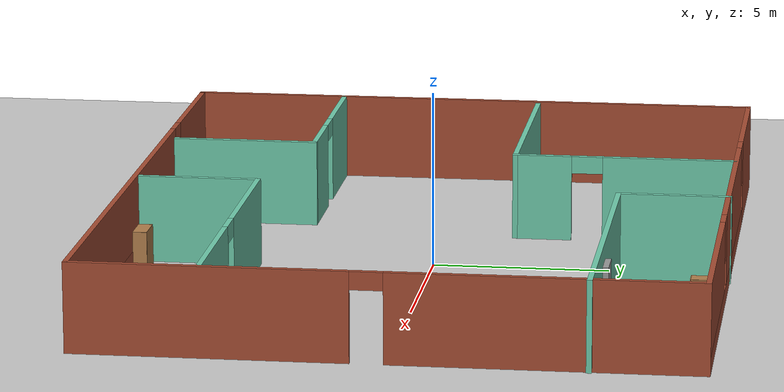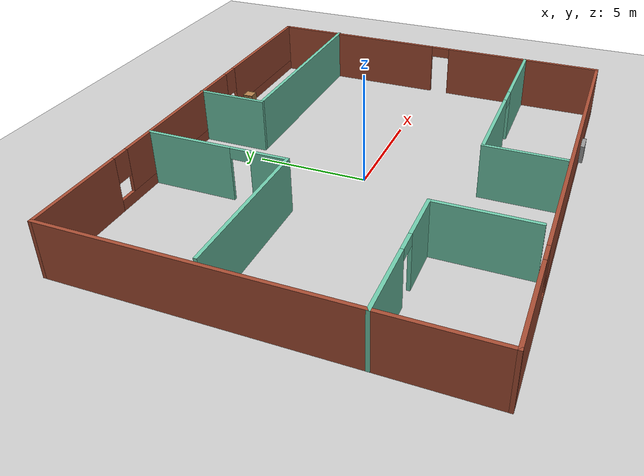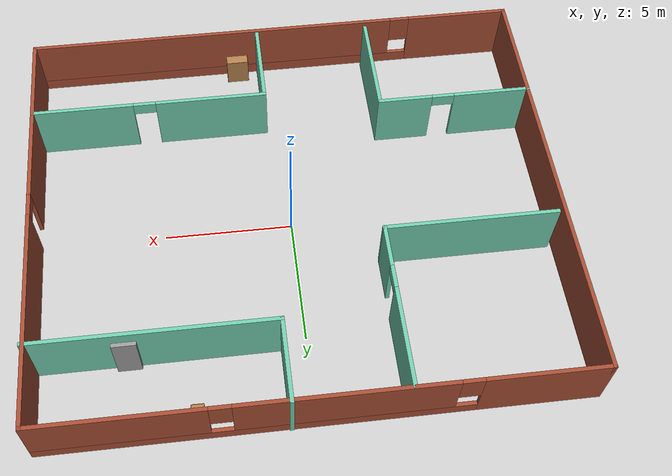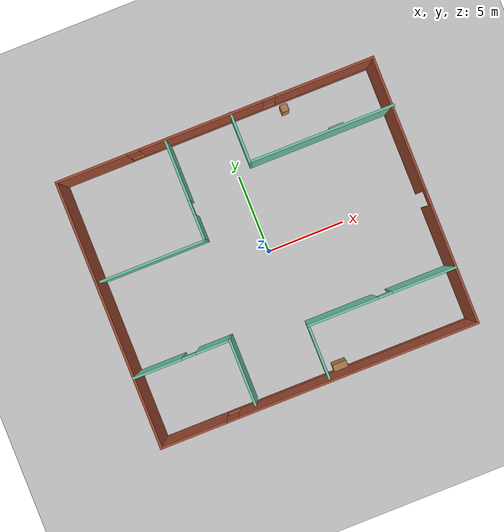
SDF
<sdf version="1.6">
 <world name="default">
  <light name="sun" type="directional">
   <pose>0 0 10 0 -0 0</pose>
   <diffuse>0.8 0.8 0.8 1</diffuse>
   <specular>0.2 0.2 0.2 1</specular>
   <attenuation>
    <range>1000</range>
    <constant>0.9</constant>
    <linear>0.01</linear>
    <quadratic>0.001</quadratic>
   </attenuation>
   <direction>-0.5 0.1 -0.9</direction>
  </light>
  <model name="ground_plane">
   <static>1</static>
   <link name="link">
    <collision name="collision">
     <geometry><plane><normal>0 0 1</normal><size>100 100</size></plane></geometry>
     <surface>
      <contact><collide_bitmask>65535</collide_bitmask></contact>
      <friction><ode><mu>100</mu><mu2>50</mu2></ode></friction>
     </surface>
    </collision>
    <visual name="visual">
     <cast_shadows>0</cast_shadows>
     <geometry><plane><normal>0 0 1</normal><size>100 100</size></plane></geometry>
     <material>
      <script><uri>file://media/materials/scripts/gazebo.material</uri><name>Gazebo/Grey</name></script>
     </material>
    </visual>
   </link>
  </model>
  <gravity>0 0 -9.8</gravity>
  <magnetic_field>6e-06 2.3e-05 -4.2e-05</magnetic_field>
  <atmosphere type="adiabatic"/>
  <physics name="default_physics" default="0" type="ode">
   <max_step_size>0.001</max_step_size>
   <real_time_factor>1</real_time_factor>
   <real_time_update_rate>1000</real_time_update_rate>
  </physics>
  <scene><ambient>0.4 0.4 0.4 1</ambient><background>0.7 0.7 0.7 1</background><shadows>1</shadows></scene>
  <spherical_coordinates>
   <surface_model>EARTH_WGS84</surface_model>
   <latitude_deg>0</latitude_deg>
   <longitude_deg>0</longitude_deg>
   <elevation>0</elevation>
   <heading_deg>0</heading_deg>
  </spherical_coordinates>
  <model name="ZilinWorld">
   <pose>-0.093491 -0.025683 0 0 -0 0</pose>
   <link name="Door_4">
    <collision name="Door_4_Collision">
     <geometry><box><size>0.9 0.17 2</size></box></geometry>
     <pose>0 0 1 0 -0 0</pose>
    </collision>
    <visual name="Door_4_Visual">
     <pose>0 0 1 0 -0 0</pose>
     <geometry><box><size>0.9 0.17 2</size></box></geometry>
     <material>
      <script><uri>file://media/materials/scripts/gazebo.material</uri><name>Gazebo/Grey</name></script>
     </material>
    </visual>
    <pose>6.60846 5.49315 0 0 -0 0</pose>
   </link>
   <link name="Wall_11">
    <pose>-0.036147 8.40851 0 0 -0 0</pose>
    <visual name="Wall_11_Visual_0">
     <pose>-7.84832 0 1.25 0 -0 0</pose>
     <geometry><box><size>4.55336 0.15 2.5</size></box></geometry>
     <material>
      <script><uri>file://media/materials/scripts/gazebo.material</uri><name>Gazebo/Bricks</name></script>
      <ambient>1 1 1 1</ambient>
     </material>
     <meta><layer>0</layer></meta>
    </visual>
    <collision name="Wall_11_Collision_0">
     <geometry><box><size>4.55336 0.15 2.5</size></box></geometry>
     <pose>-7.84832 0 1.25 0 -0 0</pose>
    </collision>
    <visual name="Wall_11_Visual_1">
     <pose>2.27668 0 0.25 0 -0 0</pose>
     <geometry><box><size>15.6966 0.15 0.5</size></box></geometry>
     <material>
      <script><uri>file://media/materials/scripts/gazebo.material</uri><name>Gazebo/Bricks</name></script>
      <ambient>1 1 1 1</ambient>
     </material>
     <meta><layer>0</layer></meta>
    </visual>
    <collision name="Wall_11_Collision_1">
     <geometry><box><size>15.6966 0.15 0.5</size></box></geometry>
     <pose>2.27668 0 0.25 0 -0 0</pose>
    </collision>
    <visual name="Wall_11_Visual_2">
     <pose>-0.86734 0 1.5 0 -0 0</pose>
     <geometry><box><size>7.80861 0.15 2</size></box></geometry>
     <material>
      <script><uri>file://media/materials/scripts/gazebo.material</uri><name>Gazebo/Bricks</name></script>
      <ambient>1 1 1 1</ambient>
     </material>
     <meta><layer>0</layer></meta>
    </visual>
    <collision name="Wall_11_Collision_2">
     <geometry><box><size>7.80861 0.15 2</size></box></geometry>
     <pose>-0.86734 0 1.5 0 -0 0</pose>
    </collision>
    <visual name="Wall_11_Visual_3">
     <pose>6.98098 0 1.5 0 -0 0</pose>
     <geometry><box><size>6.28803 0.15 2</size></box></geometry>
     <material>
      <script><uri>file://media/materials/scripts/gazebo.material</uri><name>Gazebo/Bricks</name></script>
      <ambient>1 1 1 1</ambient>
     </material>
     <meta><layer>0</layer></meta>
    </visual>
    <collision name="Wall_11_Collision_3">
     <geometry><box><size>6.28803 0.15 2</size></box></geometry>
     <pose>6.98098 0 1.5 0 -0 0</pose>
    </collision>
    <visual name="Wall_11_Visual_4">
     <pose>-5.17164 0 1.9 0 -0 0</pose>
     <geometry><box><size>0.8 0.15 1.2</size></box></geometry>
     <material>
      <script><uri>file://media/materials/scripts/gazebo.material</uri><name>Gazebo/Bricks</name></script>
      <ambient>1 1 1 1</ambient>
     </material>
     <meta><layer>0</layer></meta>
    </visual>
    <collision name="Wall_11_Collision_4">
     <geometry><box><size>0.8 0.15 1.2</size></box></geometry>
     <pose>-5.17164 0 1.9 0 -0 0</pose>
    </collision>
    <visual name="Wall_11_Visual_5">
     <pose>3.43696 0 1.9 0 -0 0</pose>
     <geometry><box><size>0.8 0.15 1.2</size></box></geometry>
     <material>
      <script><uri>file://media/materials/scripts/gazebo.material</uri><name>Gazebo/Bricks</name></script>
      <ambient>1 1 1 1</ambient>
     </material>
     <meta><layer>0</layer></meta>
    </visual>
    <collision name="Wall_11_Collision_5">
     <geometry><box><size>0.8 0.15 1.2</size></box></geometry>
     <pose>3.43696 0 1.9 0 -0 0</pose>
    </collision>
   </link>
   <link name="Wall_13">
    <collision name="Wall_13_Collision">
     <geometry><box><size>3.25 0.15 2.5</size></box></geometry>
     <pose>0 0 1.25 0 -0 0</pose>
    </collision>
    <visual name="Wall_13_Visual">
     <pose>0 0 1.25 0 -0 0</pose>
     <geometry><box><size>3.25 0.15 2.5</size></box></geometry>
     <material>
      <script><uri>file://media/materials/scripts/gazebo.material</uri><name>Gazebo/Grey</name></script>
      <ambient>0.435294 0.796078 0.67451 1</ambient>
     </material>
     <meta><layer>0</layer></meta>
    </visual>
    <pose>0.98719 6.89149 0 0 0 -1.5708</pose>
   </link>
   <link name="Wall_14">
    <collision name="Wall_14_Collision">
     <geometry><box><size>9.25 0.15 2.5</size></box></geometry>
     <pose>0 0 1.25 0 -0 0</pose>
    </collision>
    <visual name="Wall_14_Visual">
     <pose>0 0 1.25 0 -0 0</pose>
     <geometry><box><size>9.25 0.15 2.5</size></box></geometry>
     <material>
      <script><uri>file://media/materials/scripts/gazebo.material</uri><name>Gazebo/Grey</name></script>
      <ambient>0.435294 0.796078 0.67451 1</ambient>
     </material>
     <meta><layer>0</layer></meta>
    </visual>
    <pose>5.53719 5.34149 0 0 -0 0</pose>
   </link>
   <link name="Wall_16">
    <pose>-3.19643 5.18604 0 0 0 -1.5708</pose>
    <visual name="Wall_16_Visual_0">
     <pose>-1.3079 0 1.25 0 -0 0</pose>
     <geometry><box><size>3.88419 0.15 2.5</size></box></geometry>
     <material>
      <script><uri>file://media/materials/scripts/gazebo.material</uri><name>Gazebo/Grey</name></script>
      <ambient>0.435294 0.796078 0.67451 1</ambient>
     </material>
     <meta><layer>0</layer></meta>
    </visual>
    <collision name="Wall_16_Collision_0">
     <geometry><box><size>3.88419 0.15 2.5</size></box></geometry>
     <pose>-1.3079 0 1.25 0 -0 0</pose>
    </collision>
    <visual name="Wall_16_Visual_1">
     <pose>2.3921 0 1.25 0 -0 0</pose>
     <geometry><box><size>1.71581 0.15 2.5</size></box></geometry>
     <material>
      <script><uri>file://media/materials/scripts/gazebo.material</uri><name>Gazebo/Grey</name></script>
      <ambient>0.435294 0.796078 0.67451 1</ambient>
     </material>
     <meta><layer>0</layer></meta>
    </visual>
    <collision name="Wall_16_Collision_1">
     <geometry><box><size>1.71581 0.15 2.5</size></box></geometry>
     <pose>2.3921 0 1.25 0 -0 0</pose>
    </collision>
    <visual name="Wall_16_Visual_2">
     <pose>1.08419 0 2.25 0 -0 0</pose>
     <geometry><box><size>0.9 0.15 0.5</size></box></geometry>
     <material>
      <script><uri>file://media/materials/scripts/gazebo.material</uri><name>Gazebo/Grey</name></script>
      <ambient>0.435294 0.796078 0.67451 1</ambient>
     </material>
     <meta><layer>0</layer></meta>
    </visual>
    <collision name="Wall_16_Collision_2">
     <geometry><box><size>0.9 0.15 0.5</size></box></geometry>
     <pose>1.08419 0 2.25 0 -0 0</pose>
    </collision>
   </link>
   <link name="Wall_20">
    <collision name="Wall_20_Collision">
     <geometry><box><size>6.75 0.15 2.5</size></box></geometry>
     <pose>0 0 1.25 0 -0 0</pose>
    </collision>
    <visual name="Wall_20_Visual">
     <pose>0 0 1.25 0 -0 0</pose>
     <geometry><box><size>6.75 0.15 2.5</size></box></geometry>
     <material>
      <script><uri>file://media/materials/scripts/gazebo.material</uri><name>Gazebo/Grey</name></script>
      <ambient>0.435294 0.796078 0.67451 1</ambient>
     </material>
     <meta><layer>0</layer></meta>
    </visual>
    <pose>-6.49643 2.01104 0 0 -0 3.14159</pose>
   </link>
   <link name="Wall_22">
    <pose>-7.03719 -4.00401 0 0 -0 0</pose>
    <visual name="Wall_22_Visual_0">
     <pose>-1.55825 0 1.25 0 -0 0</pose>
     <geometry><box><size>3.13351 0.15 2.5</size></box></geometry>
     <material>
      <script><uri>file://media/materials/scripts/gazebo.material</uri><name>Gazebo/Grey</name></script>
      <ambient>0.435294 0.796078 0.67451 1</ambient>
     </material>
     <meta><layer>0</layer></meta>
    </visual>
    <collision name="Wall_22_Collision_0">
     <geometry><box><size>3.13351 0.15 2.5</size></box></geometry>
     <pose>-1.55825 0 1.25 0 -0 0</pose>
    </collision>
    <visual name="Wall_22_Visual_1">
     <pose>2.01675 0 1.25 0 -0 0</pose>
     <geometry><box><size>2.21649 0.15 2.5</size></box></geometry>
     <material>
      <script><uri>file://media/materials/scripts/gazebo.material</uri><name>Gazebo/Grey</name></script>
      <ambient>0.435294 0.796078 0.67451 1</ambient>
     </material>
     <meta><layer>0</layer></meta>
    </visual>
    <collision name="Wall_22_Collision_1">
     <geometry><box><size>2.21649 0.15 2.5</size></box></geometry>
     <pose>2.01675 0 1.25 0 -0 0</pose>
    </collision>
    <visual name="Wall_22_Visual_2">
     <pose>0.458508 0 2.25 0 -0 0</pose>
     <geometry><box><size>0.9 0.15 0.5</size></box></geometry>
     <material>
      <script><uri>file://media/materials/scripts/gazebo.material</uri><name>Gazebo/Grey</name></script>
      <ambient>0.435294 0.796078 0.67451 1</ambient>
     </material>
     <meta><layer>0</layer></meta>
    </visual>
    <collision name="Wall_22_Collision_2">
     <geometry><box><size>0.9 0.15 0.5</size></box></geometry>
     <pose>0.458508 0 2.25 0 -0 0</pose>
    </collision>
   </link>
   <link name="Wall_23">
    <collision name="Wall_23_Collision">
     <geometry><box><size>4.25 0.15 2.5</size></box></geometry>
     <pose>0 0 1.25 0 -0 0</pose>
    </collision>
    <visual name="Wall_23_Visual">
     <pose>0 0 1.25 0 -0 0</pose>
     <geometry><box><size>4.25 0.15 2.5</size></box></geometry>
     <material>
      <script><uri>file://media/materials/scripts/gazebo.material</uri><name>Gazebo/Grey</name></script>
      <ambient>0.435294 0.796078 0.67451 1</ambient>
     </material>
     <meta><layer>0</layer></meta>
    </visual>
    <pose>-3.98719 -6.05401 0 0 0 -1.5708</pose>
   </link>
   <link name="Wall_25">
    <pose>5.32099 -4.91139 0 0 -0 3.14159</pose>
    <visual name="Wall_25_Visual_0">
     <pose>-2.69931 0 1.25 0 -0 0</pose>
     <geometry><box><size>4.10137 0.15 2.5</size></box></geometry>
     <material>
      <script><uri>file://media/materials/scripts/gazebo.material</uri><name>Gazebo/Grey</name></script>
      <ambient>0.435294 0.796078 0.67451 1</ambient>
     </material>
     <meta><layer>0</layer></meta>
    </visual>
    <collision name="Wall_25_Collision_0">
     <geometry><box><size>4.10137 0.15 2.5</size></box></geometry>
     <pose>-2.69931 0 1.25 0 -0 0</pose>
    </collision>
    <visual name="Wall_25_Visual_1">
     <pose>2.50068 0 1.25 0 -0 0</pose>
     <geometry><box><size>4.49863 0.15 2.5</size></box></geometry>
     <material>
      <script><uri>file://media/materials/scripts/gazebo.material</uri><name>Gazebo/Grey</name></script>
      <ambient>0.435294 0.796078 0.67451 1</ambient>
     </material>
     <meta><layer>0</layer></meta>
    </visual>
    <collision name="Wall_25_Collision_1">
     <geometry><box><size>4.49863 0.15 2.5</size></box></geometry>
     <pose>2.50068 0 1.25 0 -0 0</pose>
    </collision>
    <visual name="Wall_25_Visual_2">
     <pose>-0.198629 0 2.25 0 -0 0</pose>
     <geometry><box><size>0.9 0.15 0.5</size></box></geometry>
     <material>
      <script><uri>file://media/materials/scripts/gazebo.material</uri><name>Gazebo/Grey</name></script>
      <ambient>0.435294 0.796078 0.67451 1</ambient>
     </material>
     <meta><layer>0</layer></meta>
    </visual>
    <collision name="Wall_25_Collision_2">
     <geometry><box><size>0.9 0.15 0.5</size></box></geometry>
     <pose>-0.198629 0 2.25 0 -0 0</pose>
    </collision>
   </link>
   <link name="Wall_26">
    <collision name="Wall_26_Collision">
     <geometry><box><size>3.5 0.15 2.5</size></box></geometry>
     <pose>0 0 1.25 0 -0 0</pose>
    </collision>
    <visual name="Wall_26_Visual">
     <pose>0 0 1.25 0 -0 0</pose>
     <geometry><box><size>3.5 0.15 2.5</size></box></geometry>
     <material>
      <script><uri>file://media/materials/scripts/gazebo.material</uri><name>Gazebo/Grey</name></script>
      <ambient>0.435294 0.796078 0.67451 1</ambient>
     </material>
     <meta><layer>0</layer></meta>
    </visual>
    <pose>0.645986 -6.58639 0 0 0 -1.5708</pose>
   </link>
   <link name="Wall_6">
    <collision name="Wall_6_Collision">
     <geometry><box><size>17 0.15 2.5</size></box></geometry>
     <pose>0 0 1.25 0 -0 0</pose>
    </collision>
    <visual name="Wall_6_Visual">
     <pose>0 0 1.25 0 -0 0</pose>
     <geometry><box><size>17 0.15 2.5</size></box></geometry>
     <material>
      <script><uri>file://media/materials/scripts/gazebo.material</uri><name>Gazebo/Bricks</name></script>
      <ambient>1 1 1 1</ambient>
     </material>
     <meta><layer>0</layer></meta>
    </visual>
    <pose>-10.0861 -0.016492 0 0 0 -1.5708</pose>
   </link>
   <link name="Wall_7">
    <pose>-0.036147 -8.44149 0 0 -0 0</pose>
    <visual name="Wall_7_Visual_0">
     <pose>-8.00923 0 1.25 0 -0 0</pose>
     <geometry><box><size>4.23154 0.15 2.5</size></box></geometry>
     <material>
      <script><uri>file://media/materials/scripts/gazebo.material</uri><name>Gazebo/Bricks</name></script>
      <ambient>1 1 1 1</ambient>
     </material>
     <meta><layer>0</layer></meta>
    </visual>
    <collision name="Wall_7_Collision_0">
     <geometry><box><size>4.23154 0.15 2.5</size></box></geometry>
     <pose>-8.00923 0 1.25 0 -0 0</pose>
    </collision>
    <visual name="Wall_7_Visual_1">
     <pose>2.11577 0 0.25 0 -0 0</pose>
     <geometry><box><size>16.0185 0.15 0.5</size></box></geometry>
     <material>
      <script><uri>file://media/materials/scripts/gazebo.material</uri><name>Gazebo/Bricks</name></script>
      <ambient>1 1 1 1</ambient>
     </material>
     <meta><layer>0</layer></meta>
    </visual>
    <collision name="Wall_7_Collision_1">
     <geometry><box><size>16.0185 0.15 0.5</size></box></geometry>
     <pose>2.11577 0 0.25 0 -0 0</pose>
    </collision>
    <visual name="Wall_7_Visual_2">
     <pose>2.51577 0 1.5 0 -0 0</pose>
     <geometry><box><size>15.2185 0.15 2</size></box></geometry>
     <material>
      <script><uri>file://media/materials/scripts/gazebo.material</uri><name>Gazebo/Bricks</name></script>
      <ambient>1 1 1 1</ambient>
     </material>
     <meta><layer>0</layer></meta>
    </visual>
    <collision name="Wall_7_Collision_2">
     <geometry><box><size>15.2185 0.15 2</size></box></geometry>
     <pose>2.51577 0 1.5 0 -0 0</pose>
    </collision>
    <visual name="Wall_7_Visual_3">
     <pose>-5.49346 0 1.9 0 -0 0</pose>
     <geometry><box><size>0.8 0.15 1.2</size></box></geometry>
     <material>
      <script><uri>file://media/materials/scripts/gazebo.material</uri><name>Gazebo/Bricks</name></script>
      <ambient>1 1 1 1</ambient>
     </material>
     <meta><layer>0</layer></meta>
    </visual>
    <collision name="Wall_7_Collision_3">
     <geometry><box><size>0.8 0.15 1.2</size></box></geometry>
     <pose>-5.49346 0 1.9 0 -0 0</pose>
    </collision>
   </link>
   <link name="Wall_8">
    <pose>10.0139 -0.016492 0 0 -0 1.5708</pose>
    <visual name="Wall_8_Visual_0">
     <pose>-4.71122 0 1.25 0 -0 0</pose>
     <geometry><box><size>7.57756 0.15 2.5</size></box></geometry>
     <material>
      <script><uri>file://media/materials/scripts/gazebo.material</uri><name>Gazebo/Bricks</name></script>
      <ambient>1 1 1 1</ambient>
     </material>
     <meta><layer>0</layer></meta>
    </visual>
    <collision name="Wall_8_Collision_0">
     <geometry><box><size>7.57756 0.15 2.5</size></box></geometry>
     <pose>-4.71122 0 1.25 0 -0 0</pose>
    </collision>
    <visual name="Wall_8_Visual_1">
     <pose>4.23878 0 1.25 0 -0 0</pose>
     <geometry><box><size>8.52244 0.15 2.5</size></box></geometry>
     <material>
      <script><uri>file://media/materials/scripts/gazebo.material</uri><name>Gazebo/Bricks</name></script>
      <ambient>1 1 1 1</ambient>
     </material>
     <meta><layer>0</layer></meta>
    </visual>
    <collision name="Wall_8_Collision_1">
     <geometry><box><size>8.52244 0.15 2.5</size></box></geometry>
     <pose>4.23878 0 1.25 0 -0 0</pose>
    </collision>
    <visual name="Wall_8_Visual_2">
     <pose>-0.472442 0 2.25 0 -0 0</pose>
     <geometry><box><size>0.9 0.15 0.5</size></box></geometry>
     <material>
      <script><uri>file://media/materials/scripts/gazebo.material</uri><name>Gazebo/Bricks</name></script>
      <ambient>1 1 1 1</ambient>
     </material>
     <meta><layer>0</layer></meta>
    </visual>
    <collision name="Wall_8_Collision_2">
     <geometry><box><size>0.9 0.15 0.5</size></box></geometry>
     <pose>-0.472442 0 2.25 0 -0 0</pose>
    </collision>
   </link>
   <link name="Window_1">
    <collision name="Window_1_Collision">
     <geometry><box><size>0.8 0.17 0.8</size></box></geometry>
     <pose>0 0 0.4 0 -0 0</pose>
    </collision>
    <visual name="Window_1_Visual">
     <pose>0 0 0.4 0 -0 0</pose>
     <geometry><box><size>0.8 0.17 0.8</size></box></geometry>
     <material>
      <script><uri>file://media/materials/scripts/gazebo.material</uri><name>Gazebo/Grey</name></script>
     </material>
    </visual>
    <pose>4.52718 -8.61482 0.5 0 -0 0</pose>
   </link>
   <static>1</static>
  </model>
  <model name="bookshelf">
   <static>1</static>
   <link name="link">
    <inertial><mass>1</mass></inertial>
    <collision name="back">
     <pose>0 0.005 0.6 0 -0 0</pose>
     <geometry><box><size>0.9 0.01 1.2</size></box></geometry>
    </collision>
    <visual name="visual1">
     <pose>0 0.005 0.6 0 -0 0</pose>
     <geometry><box><size>0.9 0.01 1.2</size></box></geometry>
     <material>
      <script><uri>file://media/materials/scripts/gazebo.material</uri><name>Gazebo/Wood</name></script>
     </material>
    </visual>
    <collision name="left_side">
     <pose>0.45 -0.195 0.6 0 -0 0</pose>
     <geometry><box><size>0.02 0.4 1.2</size></box></geometry>
    </collision>
    <visual name="visual2">
     <pose>0.45 -0.195 0.6 0 -0 0</pose>
     <geometry><box><size>0.02 0.4 1.2</size></box></geometry>
     <material>
      <script><uri>file://media/materials/scripts/gazebo.material</uri><name>Gazebo/Wood</name></script>
     </material>
    </visual>
    <collision name="right_side">
     <pose>-0.45 -0.195 0.6 0 -0 0</pose>
     <geometry><box><size>0.02 0.4 1.2</size></box></geometry>
    </collision>
    <visual name="visual3">
     <pose>-0.45 -0.195 0.6 0 -0 0</pose>
     <geometry><box><size>0.02 0.4 1.2</size></box></geometry>
     <material>
      <script><uri>file://media/materials/scripts/gazebo.material</uri><name>Gazebo/Wood</name></script>
     </material>
    </visual>
    <collision name="bottom">
     <pose>0 -0.195 0.03 0 -0 0</pose>
     <geometry><box><size>0.88 0.4 0.06</size></box></geometry>
    </collision>
    <visual name="visual4">
     <pose>0 -0.195 0.03 0 -0 0</pose>
     <geometry><box><size>0.88 0.4 0.06</size></box></geometry>
     <material>
      <script><uri>file://media/materials/scripts/gazebo.material</uri><name>Gazebo/Wood</name></script>
     </material>
    </visual>
    <collision name="top">
     <pose>0 -0.195 1.19 0 -0 0</pose>
     <geometry><box><size>0.88 0.4 0.02</size></box></geometry>
    </collision>
    <visual name="visual5">
     <pose>0 -0.195 1.19 0 -0 0</pose>
     <geometry><box><size>0.88 0.4 0.02</size></box></geometry>
     <material>
      <script><uri>file://media/materials/scripts/gazebo.material</uri><name>Gazebo/Wood</name></script>
     </material>
    </visual>
    <collision name="low_shelf">
     <pose>0 -0.195 0.43 0 -0 0</pose>
     <geometry><box><size>0.88 0.4 0.02</size></box></geometry>
    </collision>
    <visual name="visual6">
     <pose>0 -0.195 0.43 0 -0 0</pose>
     <geometry><box><size>0.88 0.4 0.02</size></box></geometry>
     <material>
      <script><uri>file://media/materials/scripts/gazebo.material</uri><name>Gazebo/Wood</name></script>
     </material>
    </visual>
    <collision name="high_shelf">
     <pose>0 -0.195 0.8 0 -0 0</pose>
     <geometry><box><size>0.88 0.4 0.02</size></box></geometry>
    </collision>
    <visual name="visual7">
     <pose>0 -0.195 0.8 0 -0 0</pose>
     <geometry><box><size>0.88 0.4 0.02</size></box></geometry>
     <material>
      <script><uri>file://media/materials/scripts/gazebo.material</uri><name>Gazebo/Wood</name></script>
     </material>
    </visual>
   </link>
   <pose>1.47564 -7.89623 0 0 -0 0</pose>
  </model>
  <model name="cabinet">
   <static>1</static>
   <link name="cabinet_bottom_plate">
    <inertial>
     <pose>0 0 -1 0 -0 0</pose>
     <inertia><ixx>2.05</ixx><ixy>0</ixy><ixz>0</ixz><iyy>2.05</iyy><iyz>0</iyz><izz>2.05</izz></inertia>
     <mass>25</mass>
    </inertial>
    <collision name="cabinet_bottom_plate_geom">
     <pose>0 0 0.01 0 -0 0</pose>
     <geometry><box><size>0.45 0.45 0.02</size></box></geometry>
    </collision>
    <visual name="cabinet_bottom_plate_geom_visual">
     <pose>0 0 0.01 0 -0 0</pose>
     <geometry><box><size>0.45 0.45 0.02</size></box></geometry>
     <material>
      <script><uri>file://media/materials/scripts/gazebo.material</uri><name>Gazebo/Wood</name></script>
     </material>
    </visual>
    <collision name="cabinet_bottom_plate_geom_cabinet_back_plate">
     <pose>0.235 0 0.51 0 -0 0</pose>
     <geometry><box><size>0.02 0.45 1.02</size></box></geometry>
    </collision>
    <visual name="cabinet_bottom_plate_geom_cabinet_back_plate_visual">
     <pose>0.235 0 0.51 0 -0 0</pose>
     <geometry><box><size>0.02 0.45 1.02</size></box></geometry>
     <material>
      <script><uri>file://media/materials/scripts/gazebo.material</uri><name>Gazebo/Wood</name></script>
     </material>
    </visual>
    <collision name="cabinet_bottom_plate_geom_cabinet_left_plate">
     <pose>0 0.235 0.51 0 -0 0</pose>
     <geometry><box><size>0.45 0.02 1.02</size></box></geometry>
    </collision>
    <visual name="cabinet_bottom_plate_geom_cabinet_left_plate_visual">
     <pose>0 0.235 0.51 0 -0 0</pose>
     <geometry><box><size>0.45 0.02 1.02</size></box></geometry>
     <material>
      <script><uri>file://media/materials/scripts/gazebo.material</uri><name>Gazebo/Wood</name></script>
     </material>
    </visual>
    <collision name="cabinet_bottom_plate_geom_cabinet_middle_plate">
     <pose>0 0 0.51 0 -0 0</pose>
     <geometry><box><size>0.45 0.45 0.02</size></box></geometry>
    </collision>
    <visual name="cabinet_bottom_plate_geom_cabinet_middle_plate_visual">
     <pose>0 0 0.51 0 -0 0</pose>
     <geometry><box><size>0.45 0.45 0.02</size></box></geometry>
     <material>
      <script><uri>file://media/materials/scripts/gazebo.material</uri><name>Gazebo/Wood</name></script>
     </material>
    </visual>
    <collision name="cabinet_bottom_plate_geom_cabinet_right_plate">
     <pose>0 -0.235 0.51 0 -0 0</pose>
     <geometry><box><size>0.45 0.02 1.02</size></box></geometry>
    </collision>
    <visual name="cabinet_bottom_plate_geom_cabinet_right_plate_visual">
     <pose>0 -0.235 0.51 0 -0 0</pose>
     <geometry><box><size>0.45 0.02 1.02</size></box></geometry>
     <material>
      <script><uri>file://media/materials/scripts/gazebo.material</uri><name>Gazebo/Wood</name></script>
     </material>
    </visual>
    <collision name="cabinet_bottom_plate_geom_cabinet_top_plate">
     <pose>0 0 1.01 0 -0 0</pose>
     <geometry><box><size>0.45 0.45 0.02</size></box></geometry>
    </collision>
    <visual name="cabinet_bottom_plate_geom_cabinet_top_plate_visual">
     <pose>0 0 1.01 0 -0 0</pose>
     <geometry><box><size>0.45 0.45 0.02</size></box></geometry>
     <material>
      <script><uri>file://media/materials/scripts/gazebo.material</uri><name>Gazebo/Wood</name></script>
     </material>
    </visual>
   </link>
   <pose>4.10794 7.80171 0 0 -0 0</pose>
  </model>
  <plugin filename="libcollision_map_creator.so" name="collision_map_creator"/>
 </world>
</sdf>
